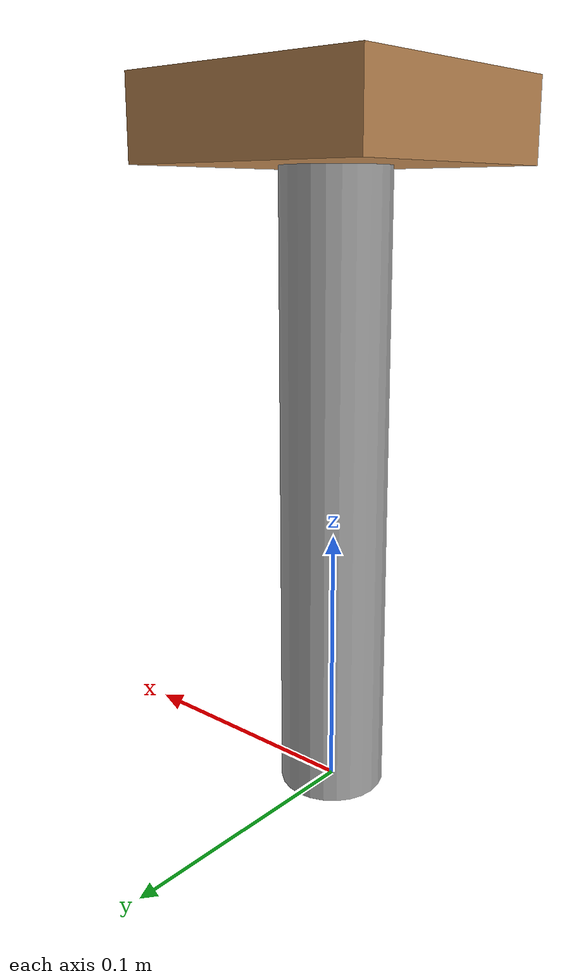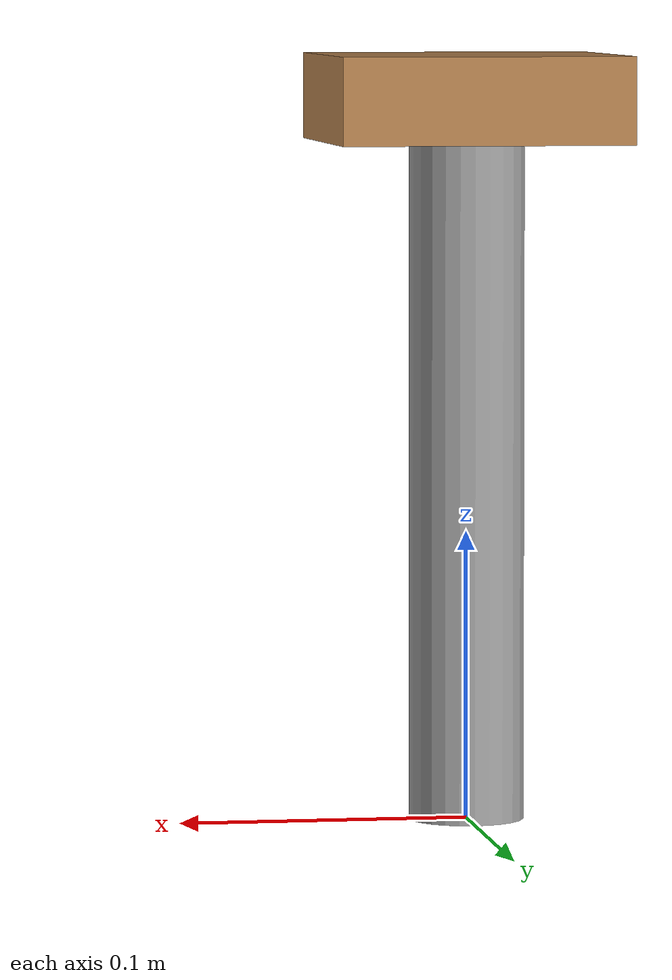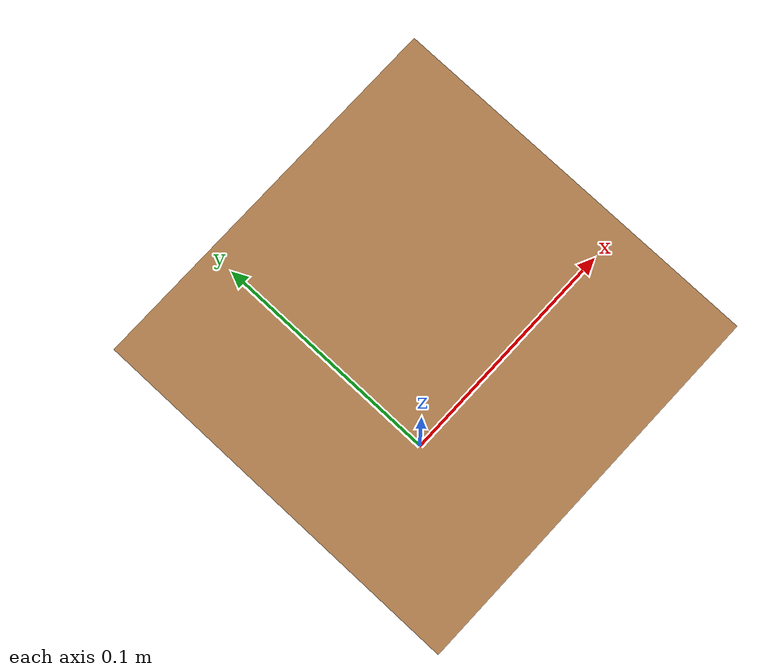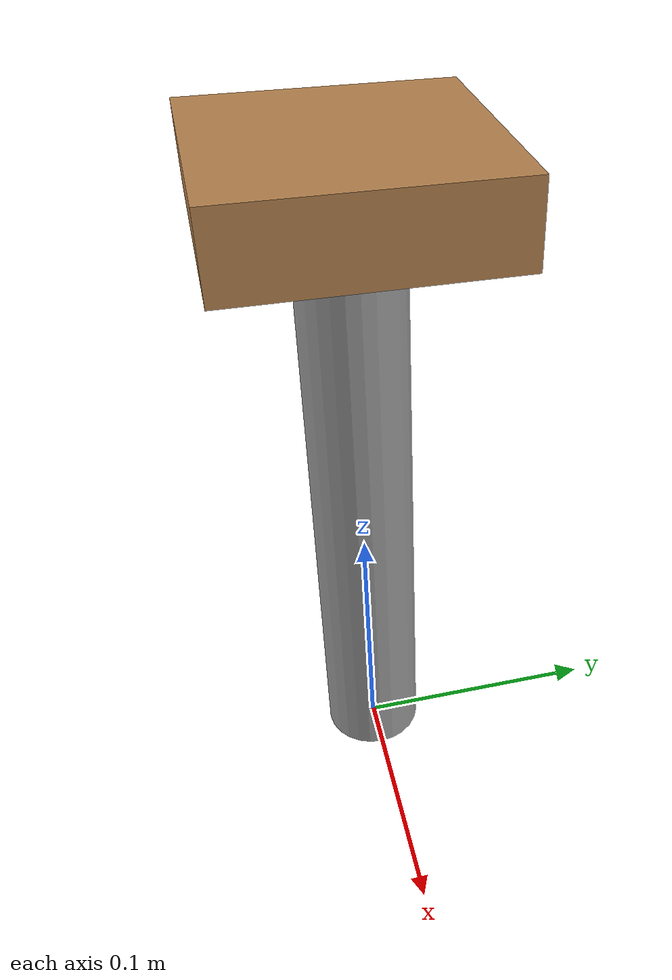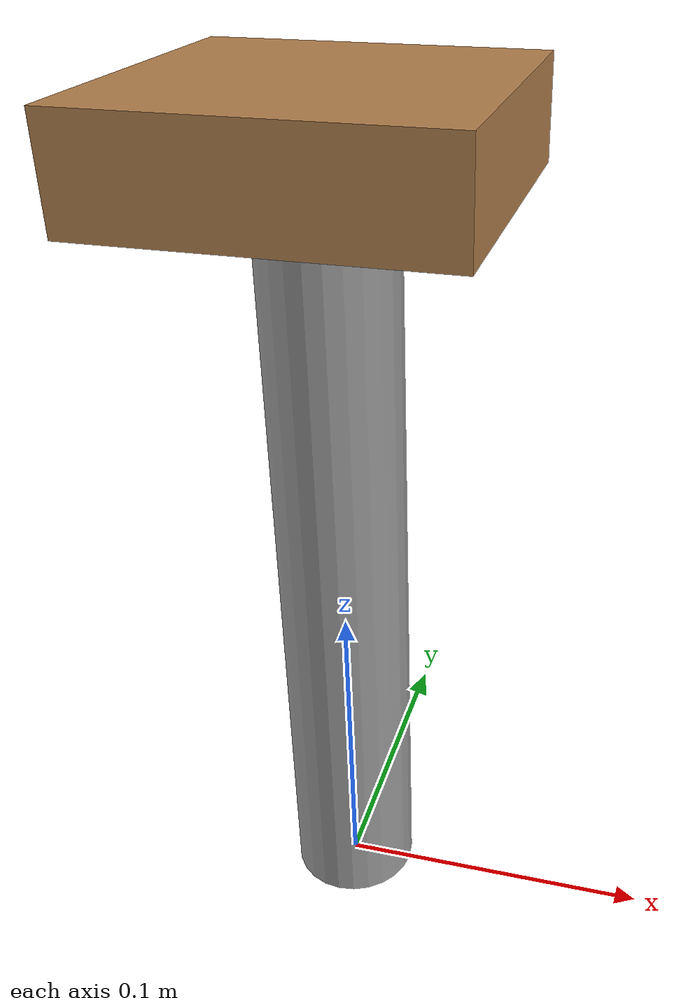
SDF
<?xml version="1.0" ?>
<sdf version='1.4'>
<model name='table'>
      <static>1</static>
      <link name='link'>
        <collision name='surface'>
          <pose>0.000000 0.000000 0.250000 0.000000 0.000000 0.000000</pose>
          <geometry>
            <box>
              <size>0.100000 0.100000 0.030000</size>
            </box>
          </geometry>
          <surface>
            <bounce/>
            <friction>
              <ode/>
            </friction>
            <contact>
              <ode/>
            </contact>
          </surface>
        </collision>
        <visual name='visual1'>
          <pose>0.000000 0.000000 0.250000 0.000000 0.000000 0.000000</pose>
          <geometry>
            <box>
              <size>0.100000 0.100000 0.030000</size>
            </box>
          </geometry>
          <material>
            <script>
              <uri>file://media/materials/scripts/gazebo.material</uri>
              <name>Gazebo/Wood</name>
            </script>
          </material>
        </visual>
        <collision name='center_leg'>
          <pose>0.000000 0.000000 0.125000 0.000000 0.000000 0.000000</pose>
          <geometry>
            <cylinder>
              <radius>0.020000</radius>
              <length>0.250000</length>
            </cylinder>
          </geometry>
          <surface>
            <bounce/>
            <friction>
              <ode/>
            </friction>
            <contact>
              <ode/>
            </contact>
          </surface>
        </collision>
        <visual name='center_leg'>
          <pose>-0.000000 0.000000 0.125000 0.000000 0.000000 0.000000</pose>
          <geometry>
            <cylinder>
              <radius>0.020000</radius>
              <length>0.250000</length>
            </cylinder>
          </geometry>
          <material>
            <script>
              <uri>file://media/materials/scripts/gazebo.material</uri>
              <name>Gazebo/Grey</name>
            </script>
          </material>
        </visual>
        <velocity_decay>
          <linear>0.000000</linear>
          <angular>0.000000</angular>
        </velocity_decay>
        <self_collide>0</self_collide>
        <kinematic>0</kinematic>
        <gravity>1</gravity>
      </link>
    </model>
</sdf>
